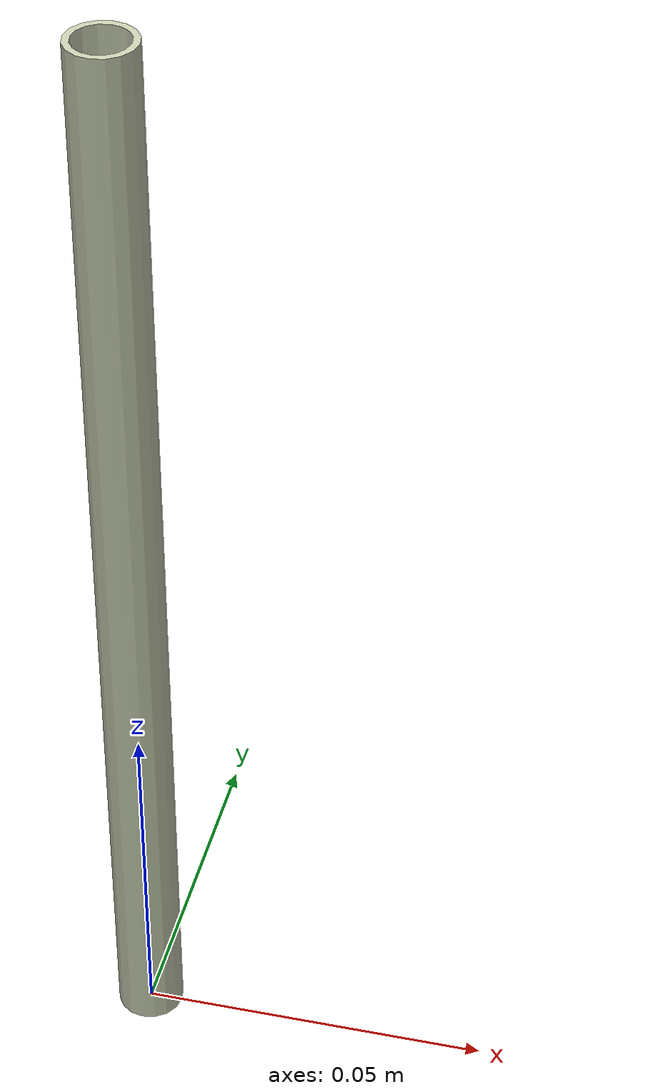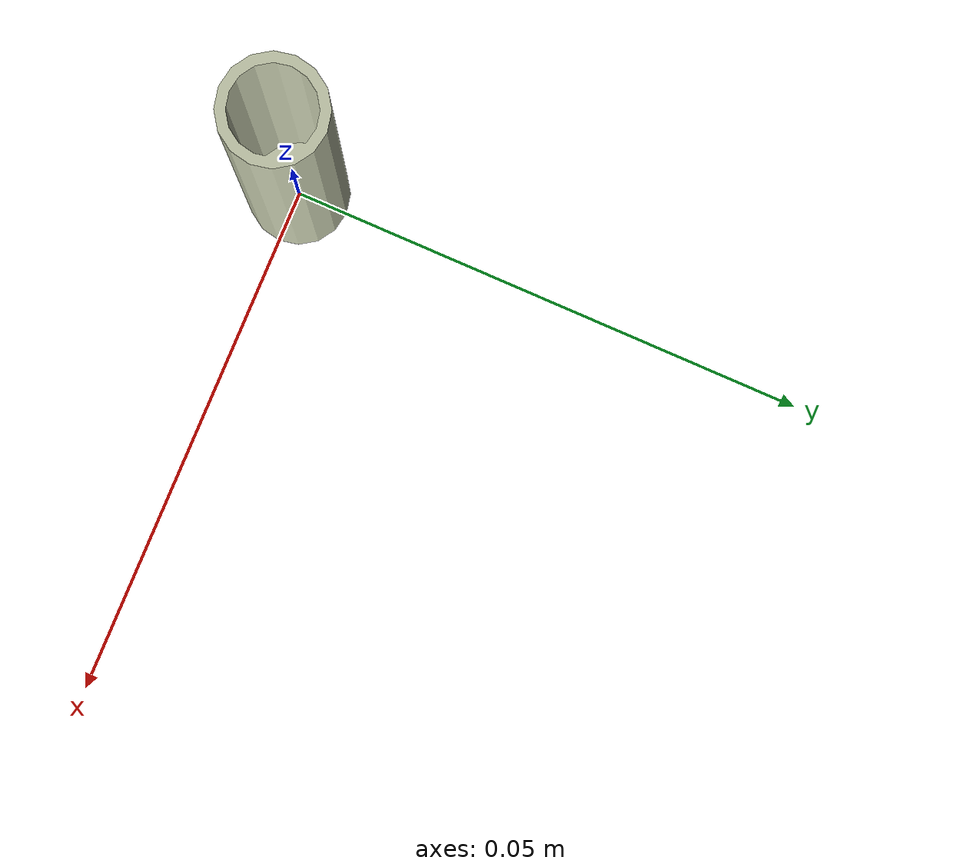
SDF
<?xml version="1.0" ?>
<sdf version="1.5">
  <model name="tube_9_5mm">
    <link name="link">
      <pose>0 0 0.08 0 0 0</pose>
      <inertial>
        <mass>0.0048</mass>
        <inertia>
          <ixx>1.0283949999999998e-05</ixx>
          <ixy>0</ixy>
          <ixz>0</ixz>
          <iyy>1.0283949999999998e-05</iyy>
          <iyz>0</iyz>
          <izz>8.789999999999999e-08</izz>
        </inertia>
      </inertial>

      <collision name="collision">
        <geometry>
          <mesh>
            <uri>model://tube_9_5mm/meshes/tube_9_5.dae</uri>
          </mesh>
        </geometry>
        <surface>
          <contact>
            <!-- stainless steel 18-8 material properties -->
            <poissons_ratio>0.305</poissons_ratio>
            <elastic_modulus>2.0e+11</elastic_modulus>
            <ode>
              <kp>100000</kp>
              <kd>100</kd>
              <max_vel>100.0</max_vel>
              <min_depth>0.001</min_depth>
            </ode>
          </contact>
          <friction>
            <torsional>
              <coefficient>1.0</coefficient>
              <use_patch_radius>0</use_patch_radius>
              <surface_radius>0.01</surface_radius>
            </torsional>
          </friction>
        </surface>
      </collision>

      <visual name="visual">
        <geometry>
          <mesh>
            <uri>model://tube_9_5mm/meshes/tube_9_5.dae</uri>
          </mesh>
        </geometry>
      </visual>

    </link>
  </model>
</sdf>
